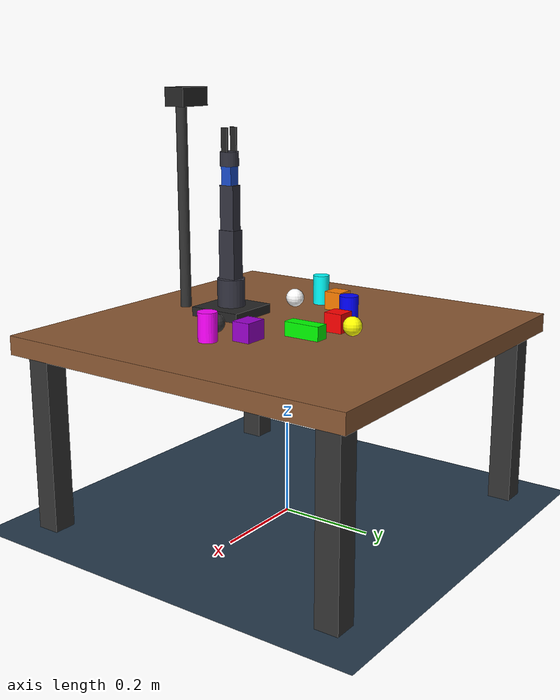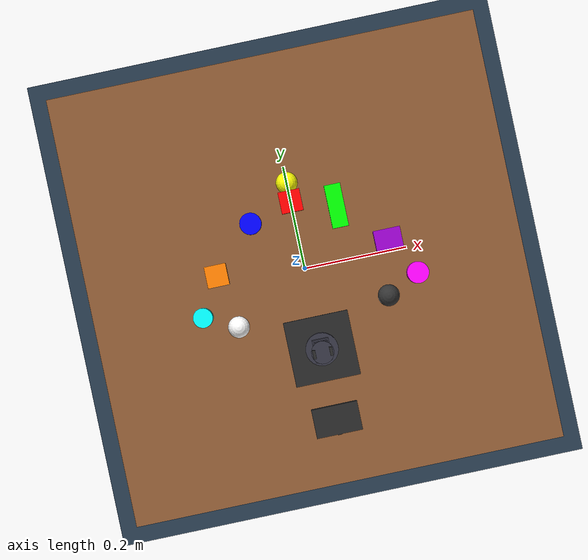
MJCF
<mujoco model="diy_6dof_arm_workspace">
    <compiler angle="radian" autolimits="true"/>
    <option gravity="0 0 -9.81" timestep="0.002"/>

    <asset>
        <texture type="skybox" builtin="gradient" rgb1="0.3 0.5 0.7" rgb2="0 0 0" width="512" height="512"/>
        <texture name="texplane" type="2d" builtin="checker" rgb1=".2 .3 .4" rgb2=".1 0.15 0.2" width="512" height="512" mark="cross" markrgb=".8 .8 .8"/>
        <material name="matplane" reflectance="0.3" texture="texplane" texrepeat="1 1" texuniform="true"/>
        <material name="wood_table" rgba="0.55 0.35 0.2 1" reflectance="0.2"/>
    </asset>

    <default>
        <default class="arm_geom">
            <geom contype="0" conaffinity="0" group="2"/>
        </default>
        <default class="tool_geom">
            <geom contype="1" conaffinity="1" friction="1 0.005 0.0001"/>
        </default>
        <joint damping="0.1" armature="0.01"/>
    </default>

    <worldbody>
        <light directional="true" diffuse=".8 .8 .8" specular=".2 .2 .2" pos="0 0 5" dir="0 0 -1"/>
        <geom name="floor" type="plane" pos="0 0 0" size="2 2 .5" material="matplane" contype="1" conaffinity="1"/>

        <!-- Large Workbench Table (Top surface at Z = 0.42m) -->
        <body name="table" pos="0 0 0.4">
            <geom type="box" size="0.4 0.4 0.02" material="wood_table" class="tool_geom"/>
            <!-- Table Legs -->
            <geom type="box" size="0.025 0.025 0.2" pos="0.35 0.35 -0.2" rgba="0.2 0.2 0.2 1"/>
            <geom type="box" size="0.025 0.025 0.2" pos="-0.35 0.35 -0.2" rgba="0.2 0.2 0.2 1"/>
            <geom type="box" size="0.025 0.025 0.2" pos="0.35 -0.35 -0.2" rgba="0.2 0.2 0.2 1"/>
            <geom type="box" size="0.025 0.025 0.2" pos="-0.35 -0.35 -0.2" rgba="0.2 0.2 0.2 1"/>
        </body>

        <!-- Elevated Over-The-Shoulder Camera (Behind Arm Base, Above Home Height) -->
        <body name="camera_mount" pos="0 -0.28 0.42">
            <!-- Stand Pole (Height = 0.46m above table, total Z = 0.88m) -->
            <geom type="cylinder" size="0.012 0.23" pos="0 0 0.23" rgba="0.2 0.2 0.2 1" class="arm_geom"/>
            <!-- Camera Housing -->
            <geom type="box" size="0.04 0.025 0.02" pos="0 0.015 0.46" rgba="0.15 0.15 0.15 1" class="arm_geom"/>
            <!-- Camera Lens (Bends down towards the table & end-effector movement) -->
            <camera name="workspace_camera" pos="0 0.025 0.46" xyaxes="1 0 0 0 0.77 0.63" fovy="70"/>
        </body>

        <!-- DIY 6-DOF Robot Arm Mounted on Table at Z = 0.42m -->
        <body name="base_link" pos="0 -0.15 0.42">
            <geom type="box" size="0.06 0.06 0.01" pos="0 0 0.01" rgba="0.15 0.15 0.15 1" class="tool_geom"/>

            <!-- Joint 1: Base Pan (Full -1.5708 to +1.5708 rad / -90 to +90 deg) -->
            <body name="link1" pos="0 0 0.02">
                <joint name="joint1" type="hinge" axis="0 0 1" range="-1.5708 1.5708"/>
                <geom type="cylinder" size="0.03 0.03" pos="0 0 0.03" rgba="0.2 0.2 0.25 1" class="arm_geom"/>

                <!-- Joint 2: Shoulder Pitch (-1.5708 to +1.5708 rad) -->
                <body name="link2" pos="0 0 0.06">
                    <joint name="joint2" type="hinge" axis="0 1 0" range="-1.5708 1.5708"/>
                    <geom type="box" size="0.015 0.02 0.0525" pos="0 0 0.0525" rgba="0.2 0.2 0.25 1" class="arm_geom"/>

                    <!-- Joint 3: Elbow Pitch (-1.5708 to +1.5708 rad) -->
                    <body name="link3" pos="0 0 0.105">
                        <joint name="joint3" type="hinge" axis="0 1 0" range="-1.5708 1.5708"/>
                        <geom type="box" size="0.0125 0.0175 0.0475" pos="0 0 0.0475" rgba="0.2 0.2 0.25 1" class="arm_geom"/>

                        <!-- Joint 4: Wrist Pitch (-1.5708 to +1.5708 rad) -->
                        <body name="link4" pos="0 0 0.095">
                            <joint name="joint4" type="hinge" axis="0 1 0" range="-1.5708 1.5708"/>
                            <geom type="box" size="0.0125 0.0125 0.02" pos="0 0 0.02" rgba="0.1 0.3 0.8 1" class="arm_geom"/>

                            <!-- Joint 5: Wrist Roll (-3.1415 to +3.1415 rad) -->
                            <body name="link5" pos="0 0 0.04">
                                <joint name="joint5" type="hinge" axis="1 0 0" range="-3.1415 3.1415"/>
                                <geom type="cylinder" size="0.02 0.015" pos="0 0 0.015" rgba="0.2 0.2 0.25 1" class="arm_geom"/>

                                <!-- Gripper Left Finger -->
                                <body name="left_finger" pos="0.015 0 0.03">
                                    <joint name="gripper_left_joint" type="slide" axis="1 0 0" range="0 0.03"/>
                                    <geom type="box" size="0.0025 0.0075 0.025" pos="0 0 0.025" rgba="0.15 0.15 0.15 1" class="tool_geom"/>
                                </body>

                                <!-- Gripper Right Finger -->
                                <body name="right_finger" pos="-0.015 0 0.03">
                                    <joint name="gripper_right_joint" type="slide" axis="-1 0 0" range="0 0.03"/>
                                    <geom type="box" size="0.0025 0.0075 0.025" pos="0 0 0.025" rgba="0.15 0.15 0.15 1" class="tool_geom"/>
                                </body>
                            </body>
                        </body>
                    </body>
                </body>
            </body>
        </body>

        <!-- CENTER OBJECTS -->
        <body name="red_cube" pos="0.0 0.125 0.445">
            <freejoint/>
            <geom type="box" size="0.02 0.02 0.02" rgba="1 0 0 1" mass="0.05" class="tool_geom"/>
        </body>

        <body name="yellow_sphere" pos="0.0 0.16 0.44">
            <freejoint/>
            <geom type="sphere" size="0.02" rgba="1 1 0 1" mass="0.03" class="tool_geom"/>
        </body>

        <!-- LEFT SIDE OBJECTS -->
        <body name="blue_cylinder" pos="-0.08 0.10 0.45">
            <freejoint/>
            <geom type="cylinder" size="0.02 0.03" rgba="0 0 1 1" mass="0.05" class="tool_geom"/>
        </body>

        <body name="orange_cube" pos="-0.16 0.02 0.445">
            <freejoint/>
            <geom type="box" size="0.02 0.02 0.02" rgba="1 0.5 0 1" mass="0.05" class="tool_geom"/>
        </body>

        <body name="cyan_cylinder" pos="-0.20 -0.05 0.45">
            <freejoint/>
            <geom type="cylinder" size="0.018 0.035" rgba="0 1 1 1" mass="0.05" class="tool_geom"/>
        </body>

        <body name="white_sphere" pos="-0.14 -0.08 0.44">
            <freejoint/>
            <geom type="sphere" size="0.02" rgba="1 1 1 1" mass="0.03" class="tool_geom"/>
        </body>

        <!-- RIGHT SIDE OBJECTS -->
        <body name="green_cuboid" pos="0.08 0.10 0.44">
            <freejoint/>
            <geom type="box" size="0.015 0.04 0.015" rgba="0 1 0 1" mass="0.05" class="tool_geom"/>
        </body>

        <body name="purple_box" pos="0.16 0.02 0.445">
            <freejoint/>
            <geom type="box" size="0.025 0.02 0.02" rgba="0.6 0 0.8 1" mass="0.05" class="tool_geom"/>
        </body>

        <body name="magenta_cylinder" pos="0.20 -0.05 0.45">
            <freejoint/>
            <geom type="cylinder" size="0.02 0.03" rgba="1 0 1 1" mass="0.05" class="tool_geom"/>
        </body>

        <body name="black_sphere" pos="0.14 -0.08 0.44">
            <freejoint/>
            <geom type="sphere" size="0.02" rgba="0.2 0.2 0.2 1" mass="0.03" class="tool_geom"/>
        </body>
    </worldbody>

    <!-- Position Actuators with Explicit Full Control Ranges -->
    <actuator>
        <position name="srv_base_pan" joint="joint1" kp="30" kv="3" ctrlrange="-1.5708 1.5708"/>
        <position name="srv_shoulder_pitch" joint="joint2" kp="50" kv="5" ctrlrange="-1.5708 1.5708"/>
        <position name="srv_elbow_pitch" joint="joint3" kp="40" kv="4" ctrlrange="-1.5708 1.5708"/>
        <position name="srv_wrist_pitch" joint="joint4" kp="20" kv="2" ctrlrange="-1.5708 1.5708"/>
        <position name="srv_wrist_roll" joint="joint5" kp="20" kv="2" ctrlrange="-3.1415 3.1415"/>
        <position name="srv_gripper_left" joint="gripper_left_joint" kp="100" kv="5" ctrlrange="0 0.03"/>
        <position name="srv_gripper_right" joint="gripper_right_joint" kp="100" kv="5" ctrlrange="0 0.03"/>
    </actuator>
</mujoco>
